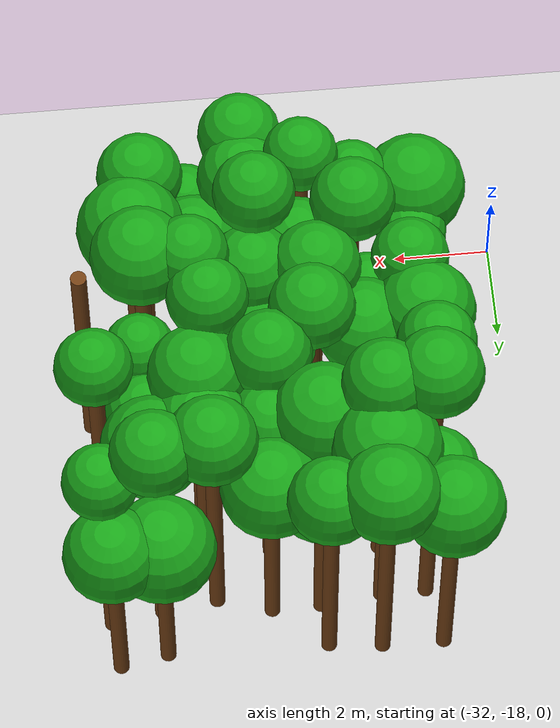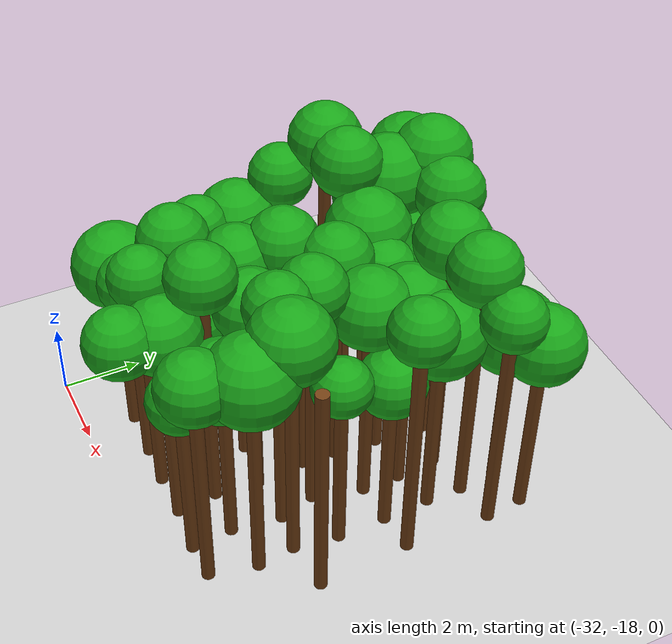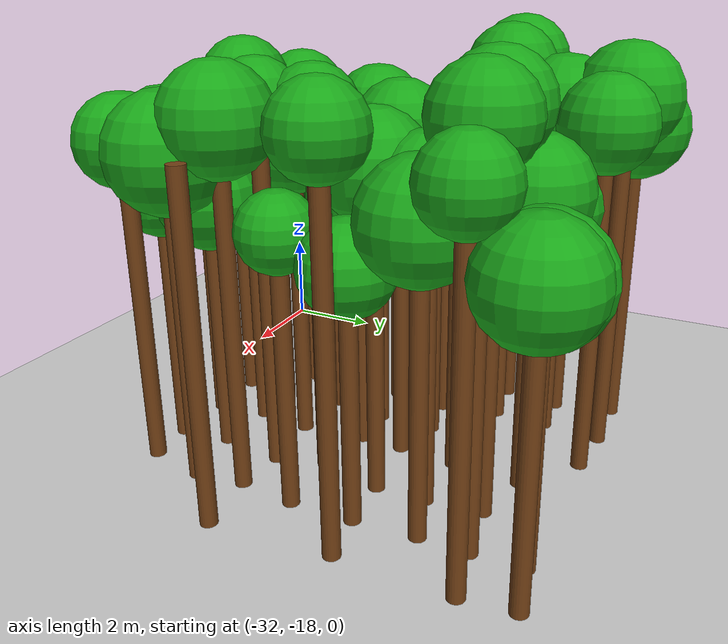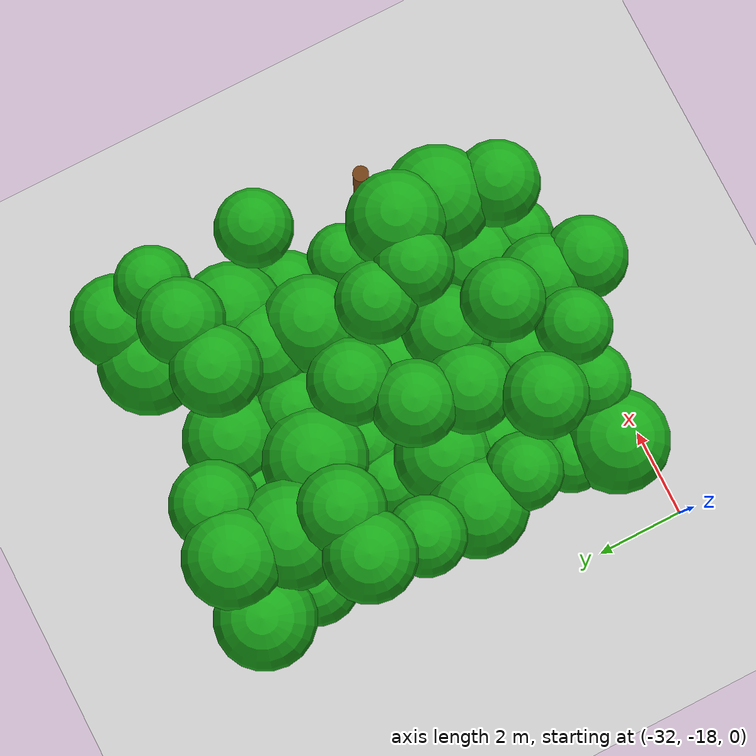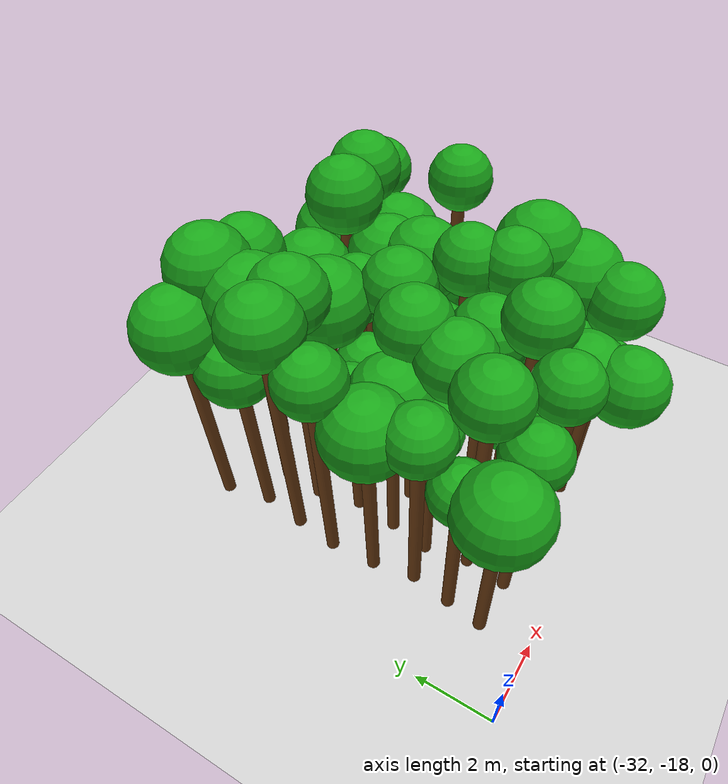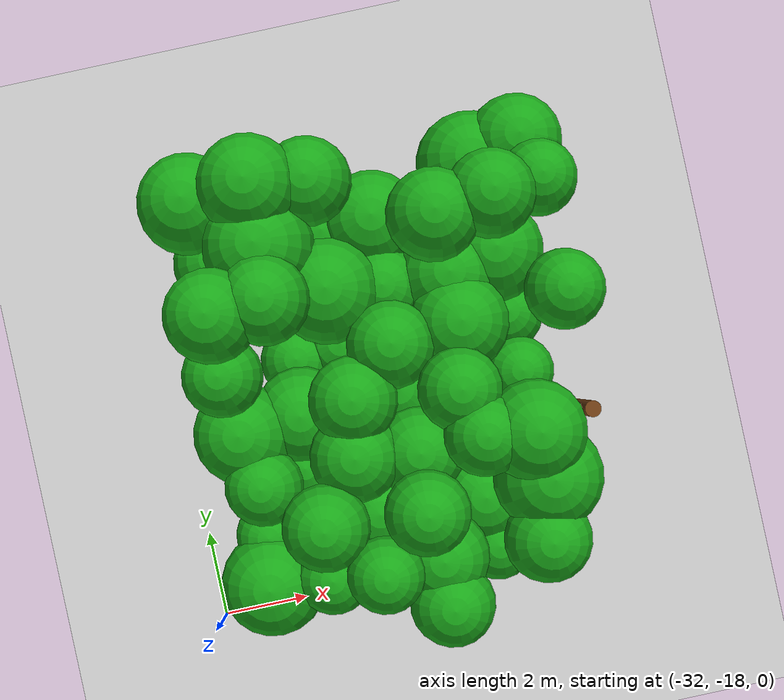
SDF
<sdf version="1.6">
 <world name="forest_world">
  <include><uri>model://sun</uri></include>
  <include><uri>model://ground_plane</uri></include>
  <model name="tree_12_trunk">
   <static>true</static>
   <pose>-30.12 -16.72 2.31 0 0 0</pose>
   <link name="link">
    <collision name="collision">
     <geometry><cylinder><radius>0.16</radius><length>4.62</length></cylinder></geometry>
    </collision>
    <visual name="visual">
     <geometry><cylinder><radius>0.16</radius><length>4.62</length></cylinder></geometry>
     <material><ambient>0.35 0.20 0.05 1</ambient><diffuse>0.45 0.25 0.08 1</diffuse></material>
    </visual>
   </link>
  </model>
  <model name="tree_12_leaf">
   <static>true</static>
   <pose>-30.12 -16.72 5.25 0 0 0</pose>
   <link name="link">
    <collision name="collision"><geometry><sphere><radius>1.06</radius></sphere></geometry></collision>
    <visual name="visual">
     <geometry><sphere><radius>1.06</radius></sphere></geometry>
     <material><ambient>0.05 0.45 0.05 1</ambient><diffuse>0.10 0.65 0.10 1</diffuse></material>
    </visual>
   </link>
  </model>
  <model name="tree_13_trunk">
   <static>true</static>
   <pose>-29.99 -15.78 2.33 0 0 0</pose>
   <link name="link">
    <collision name="collision">
     <geometry><cylinder><radius>0.16</radius><length>4.66</length></cylinder></geometry>
    </collision>
    <visual name="visual">
     <geometry><cylinder><radius>0.16</radius><length>4.66</length></cylinder></geometry>
     <material><ambient>0.35 0.20 0.05 1</ambient><diffuse>0.45 0.25 0.08 1</diffuse></material>
    </visual>
   </link>
  </model>
  <model name="tree_13_leaf">
   <static>true</static>
   <pose>-29.99 -15.78 5.08 0 0 0</pose>
   <link name="link">
    <collision name="collision"><geometry><sphere><radius>0.71</radius></sphere></geometry></collision>
    <visual name="visual">
     <geometry><sphere><radius>0.71</radius></sphere></geometry>
     <material><ambient>0.05 0.45 0.05 1</ambient><diffuse>0.10 0.65 0.10 1</diffuse></material>
    </visual>
   </link>
  </model>
  <model name="tree_14_trunk">
   <static>true</static>
   <pose>-29.84 -14.74 2.73 0 0 0</pose>
   <link name="link">
    <collision name="collision">
     <geometry><cylinder><radius>0.16</radius><length>5.46</length></cylinder></geometry>
    </collision>
    <visual name="visual">
     <geometry><cylinder><radius>0.16</radius><length>5.46</length></cylinder></geometry>
     <material><ambient>0.35 0.20 0.05 1</ambient><diffuse>0.45 0.25 0.08 1</diffuse></material>
    </visual>
   </link>
  </model>
  <model name="tree_14_leaf">
   <static>true</static>
   <pose>-29.84 -14.74 5.92 0 0 0</pose>
   <link name="link">
    <collision name="collision"><geometry><sphere><radius>0.78</radius></sphere></geometry></collision>
    <visual name="visual">
     <geometry><sphere><radius>0.78</radius></sphere></geometry>
     <material><ambient>0.05 0.45 0.05 1</ambient><diffuse>0.10 0.65 0.10 1</diffuse></material>
    </visual>
   </link>
  </model>
  <model name="tree_15_trunk">
   <static>true</static>
   <pose>-30.04 -13.66 2.52 0 0 0</pose>
   <link name="link">
    <collision name="collision">
     <geometry><cylinder><radius>0.16</radius><length>5.03</length></cylinder></geometry>
    </collision>
    <visual name="visual">
     <geometry><cylinder><radius>0.16</radius><length>5.03</length></cylinder></geometry>
     <material><ambient>0.35 0.20 0.05 1</ambient><diffuse>0.45 0.25 0.08 1</diffuse></material>
    </visual>
   </link>
  </model>
  <model name="tree_15_leaf">
   <static>true</static>
   <pose>-30.04 -13.66 5.64 0 0 0</pose>
   <link name="link">
    <collision name="collision"><geometry><sphere><radius>1.01</radius></sphere></geometry></collision>
    <visual name="visual">
     <geometry><sphere><radius>1.01</radius></sphere></geometry>
     <material><ambient>0.05 0.45 0.05 1</ambient><diffuse>0.10 0.65 0.10 1</diffuse></material>
    </visual>
   </link>
  </model>
  <model name="tree_16_trunk">
   <static>true</static>
   <pose>-30.11 -12.47 3.04 0 0 0</pose>
   <link name="link">
    <collision name="collision">
     <geometry><cylinder><radius>0.16</radius><length>6.08</length></cylinder></geometry>
    </collision>
    <visual name="visual">
     <geometry><cylinder><radius>0.16</radius><length>6.08</length></cylinder></geometry>
     <material><ambient>0.35 0.20 0.05 1</ambient><diffuse>0.45 0.25 0.08 1</diffuse></material>
    </visual>
   </link>
  </model>
  <model name="tree_16_leaf">
   <static>true</static>
   <pose>-30.11 -12.47 6.55 0 0 0</pose>
   <link name="link">
    <collision name="collision"><geometry><sphere><radius>0.79</radius></sphere></geometry></collision>
    <visual name="visual">
     <geometry><sphere><radius>0.79</radius></sphere></geometry>
     <material><ambient>0.05 0.45 0.05 1</ambient><diffuse>0.10 0.65 0.10 1</diffuse></material>
    </visual>
   </link>
  </model>
  <model name="tree_17_trunk">
   <static>true</static>
   <pose>-29.99 -11.35 3.40 0 0 0</pose>
   <link name="link">
    <collision name="collision">
     <geometry><cylinder><radius>0.16</radius><length>6.81</length></cylinder></geometry>
    </collision>
    <visual name="visual">
     <geometry><cylinder><radius>0.16</radius><length>6.81</length></cylinder></geometry>
     <material><ambient>0.35 0.20 0.05 1</ambient><diffuse>0.45 0.25 0.08 1</diffuse></material>
    </visual>
   </link>
  </model>
  <model name="tree_17_leaf">
   <static>true</static>
   <pose>-29.99 -11.35 7.35 0 0 0</pose>
   <link name="link">
    <collision name="collision"><geometry><sphere><radius>0.90</radius></sphere></geometry></collision>
    <visual name="visual">
     <geometry><sphere><radius>0.90</radius></sphere></geometry>
     <material><ambient>0.05 0.45 0.05 1</ambient><diffuse>0.10 0.65 0.10 1</diffuse></material>
    </visual>
   </link>
  </model>
  <model name="tree_18_trunk">
   <static>true</static>
   <pose>-29.84 -10.22 2.43 0 0 0</pose>
   <link name="link">
    <collision name="collision">
     <geometry><cylinder><radius>0.16</radius><length>4.86</length></cylinder></geometry>
    </collision>
    <visual name="visual">
     <geometry><cylinder><radius>0.16</radius><length>4.86</length></cylinder></geometry>
     <material><ambient>0.35 0.20 0.05 1</ambient><diffuse>0.45 0.25 0.08 1</diffuse></material>
    </visual>
   </link>
  </model>
  <model name="tree_18_leaf">
   <static>true</static>
   <pose>-29.84 -10.22 5.41 0 0 0</pose>
   <link name="link">
    <collision name="collision"><geometry><sphere><radius>0.91</radius></sphere></geometry></collision>
    <visual name="visual">
     <geometry><sphere><radius>0.91</radius></sphere></geometry>
     <material><ambient>0.05 0.45 0.05 1</ambient><diffuse>0.10 0.65 0.10 1</diffuse></material>
    </visual>
   </link>
  </model>
  <model name="tree_19_trunk">
   <static>true</static>
   <pose>-30.09 -9.06 2.80 0 0 0</pose>
   <link name="link">
    <collision name="collision">
     <geometry><cylinder><radius>0.16</radius><length>5.60</length></cylinder></geometry>
    </collision>
    <visual name="visual">
     <geometry><cylinder><radius>0.16</radius><length>5.60</length></cylinder></geometry>
     <material><ambient>0.35 0.20 0.05 1</ambient><diffuse>0.45 0.25 0.08 1</diffuse></material>
    </visual>
   </link>
  </model>
  <model name="tree_19_leaf">
   <static>true</static>
   <pose>-30.09 -9.06 6.20 0 0 0</pose>
   <link name="link">
    <collision name="collision"><geometry><sphere><radius>1.00</radius></sphere></geometry></collision>
    <visual name="visual">
     <geometry><sphere><radius>1.00</radius></sphere></geometry>
     <material><ambient>0.05 0.45 0.05 1</ambient><diffuse>0.10 0.65 0.10 1</diffuse></material>
    </visual>
   </link>
  </model>
  <model name="tree_67_trunk">
   <static>true</static>
   <pose>-28.88 -16.77 2.61 0 0 0</pose>
   <link name="link">
    <collision name="collision">
     <geometry><cylinder><radius>0.16</radius><length>5.22</length></cylinder></geometry>
    </collision>
    <visual name="visual">
     <geometry><cylinder><radius>0.16</radius><length>5.22</length></cylinder></geometry>
     <material><ambient>0.35 0.20 0.05 1</ambient><diffuse>0.45 0.25 0.08 1</diffuse></material>
    </visual>
   </link>
  </model>
  <model name="tree_67_leaf">
   <static>true</static>
   <pose>-28.88 -16.77 5.68 0 0 0</pose>
   <link name="link">
    <collision name="collision"><geometry><sphere><radius>0.77</radius></sphere></geometry></collision>
    <visual name="visual">
     <geometry><sphere><radius>0.77</radius></sphere></geometry>
     <material><ambient>0.05 0.45 0.05 1</ambient><diffuse>0.10 0.65 0.10 1</diffuse></material>
    </visual>
   </link>
  </model>
  <model name="tree_68_trunk">
   <static>true</static>
   <pose>-28.78 -15.70 3.07 0 0 0</pose>
   <link name="link">
    <collision name="collision">
     <geometry><cylinder><radius>0.16</radius><length>6.15</length></cylinder></geometry>
    </collision>
    <visual name="visual">
     <geometry><cylinder><radius>0.16</radius><length>6.15</length></cylinder></geometry>
     <material><ambient>0.35 0.20 0.05 1</ambient><diffuse>0.45 0.25 0.08 1</diffuse></material>
    </visual>
   </link>
  </model>
  <model name="tree_68_leaf">
   <static>true</static>
   <pose>-28.78 -15.70 6.66 0 0 0</pose>
   <link name="link">
    <collision name="collision"><geometry><sphere><radius>0.85</radius></sphere></geometry></collision>
    <visual name="visual">
     <geometry><sphere><radius>0.85</radius></sphere></geometry>
     <material><ambient>0.05 0.45 0.05 1</ambient><diffuse>0.10 0.65 0.10 1</diffuse></material>
    </visual>
   </link>
  </model>
  <model name="tree_69_trunk">
   <static>true</static>
   <pose>-28.99 -14.58 2.33 0 0 0</pose>
   <link name="link">
    <collision name="collision">
     <geometry><cylinder><radius>0.16</radius><length>4.65</length></cylinder></geometry>
    </collision>
    <visual name="visual">
     <geometry><cylinder><radius>0.16</radius><length>4.65</length></cylinder></geometry>
     <material><ambient>0.35 0.20 0.05 1</ambient><diffuse>0.45 0.25 0.08 1</diffuse></material>
    </visual>
   </link>
  </model>
  <model name="tree_69_leaf">
   <static>true</static>
   <pose>-28.99 -14.58 5.08 0 0 0</pose>
   <link name="link">
    <collision name="collision"><geometry><sphere><radius>0.71</radius></sphere></geometry></collision>
    <visual name="visual">
     <geometry><sphere><radius>0.71</radius></sphere></geometry>
     <material><ambient>0.05 0.45 0.05 1</ambient><diffuse>0.10 0.65 0.10 1</diffuse></material>
    </visual>
   </link>
  </model>
  <model name="tree_70_trunk">
   <static>true</static>
   <pose>-28.83 -13.54 2.40 0 0 0</pose>
   <link name="link">
    <collision name="collision">
     <geometry><cylinder><radius>0.16</radius><length>4.80</length></cylinder></geometry>
    </collision>
    <visual name="visual">
     <geometry><cylinder><radius>0.16</radius><length>4.80</length></cylinder></geometry>
     <material><ambient>0.35 0.20 0.05 1</ambient><diffuse>0.45 0.25 0.08 1</diffuse></material>
    </visual>
   </link>
  </model>
  <model name="tree_70_leaf">
   <static>true</static>
   <pose>-28.83 -13.54 5.39 0 0 0</pose>
   <link name="link">
    <collision name="collision"><geometry><sphere><radius>0.98</radius></sphere></geometry></collision>
    <visual name="visual">
     <geometry><sphere><radius>0.98</radius></sphere></geometry>
     <material><ambient>0.05 0.45 0.05 1</ambient><diffuse>0.10 0.65 0.10 1</diffuse></material>
    </visual>
   </link>
  </model>
  <model name="tree_71_trunk">
   <static>true</static>
   <pose>-28.73 -12.42 2.08 0 0 0</pose>
   <link name="link">
    <collision name="collision">
     <geometry><cylinder><radius>0.16</radius><length>4.15</length></cylinder></geometry>
    </collision>
    <visual name="visual">
     <geometry><cylinder><radius>0.16</radius><length>4.15</length></cylinder></geometry>
     <material><ambient>0.35 0.20 0.05 1</ambient><diffuse>0.45 0.25 0.08 1</diffuse></material>
    </visual>
   </link>
  </model>
  <model name="tree_71_leaf">
   <static>true</static>
   <pose>-28.73 -12.42 4.62 0 0 0</pose>
   <link name="link">
    <collision name="collision"><geometry><sphere><radius>0.78</radius></sphere></geometry></collision>
    <visual name="visual">
     <geometry><sphere><radius>0.78</radius></sphere></geometry>
     <material><ambient>0.05 0.45 0.05 1</ambient><diffuse>0.10 0.65 0.10 1</diffuse></material>
    </visual>
   </link>
  </model>
  <model name="tree_72_trunk">
   <static>true</static>
   <pose>-28.98 -11.27 3.39 0 0 0</pose>
   <link name="link">
    <collision name="collision">
     <geometry><cylinder><radius>0.16</radius><length>6.78</length></cylinder></geometry>
    </collision>
    <visual name="visual">
     <geometry><cylinder><radius>0.16</radius><length>6.78</length></cylinder></geometry>
     <material><ambient>0.35 0.20 0.05 1</ambient><diffuse>0.45 0.25 0.08 1</diffuse></material>
    </visual>
   </link>
  </model>
  <model name="tree_72_leaf">
   <static>true</static>
   <pose>-28.98 -11.27 7.30 0 0 0</pose>
   <link name="link">
    <collision name="collision"><geometry><sphere><radius>0.86</radius></sphere></geometry></collision>
    <visual name="visual">
     <geometry><sphere><radius>0.86</radius></sphere></geometry>
     <material><ambient>0.05 0.45 0.05 1</ambient><diffuse>0.10 0.65 0.10 1</diffuse></material>
    </visual>
   </link>
  </model>
  <model name="tree_73_trunk">
   <static>true</static>
   <pose>-28.92 -10.21 2.96 0 0 0</pose>
   <link name="link">
    <collision name="collision">
     <geometry><cylinder><radius>0.16</radius><length>5.92</length></cylinder></geometry>
    </collision>
    <visual name="visual">
     <geometry><cylinder><radius>0.16</radius><length>5.92</length></cylinder></geometry>
     <material><ambient>0.35 0.20 0.05 1</ambient><diffuse>0.45 0.25 0.08 1</diffuse></material>
    </visual>
   </link>
  </model>
  <model name="tree_73_leaf">
   <static>true</static>
   <pose>-28.92 -10.21 6.57 0 0 0</pose>
   <link name="link">
    <collision name="collision"><geometry><sphere><radius>1.08</radius></sphere></geometry></collision>
    <visual name="visual">
     <geometry><sphere><radius>1.08</radius></sphere></geometry>
     <material><ambient>0.05 0.45 0.05 1</ambient><diffuse>0.10 0.65 0.10 1</diffuse></material>
    </visual>
   </link>
  </model>
  <model name="tree_74_trunk">
   <static>true</static>
   <pose>-28.84 -9.07 3.18 0 0 0</pose>
   <link name="link">
    <collision name="collision">
     <geometry><cylinder><radius>0.16</radius><length>6.36</length></cylinder></geometry>
    </collision>
    <visual name="visual">
     <geometry><cylinder><radius>0.16</radius><length>6.36</length></cylinder></geometry>
     <material><ambient>0.35 0.20 0.05 1</ambient><diffuse>0.45 0.25 0.08 1</diffuse></material>
    </visual>
   </link>
  </model>
  <model name="tree_74_leaf">
   <static>true</static>
   <pose>-28.84 -9.07 6.95 0 0 0</pose>
   <link name="link">
    <collision name="collision"><geometry><sphere><radius>0.98</radius></sphere></geometry></collision>
    <visual name="visual">
     <geometry><sphere><radius>0.98</radius></sphere></geometry>
     <material><ambient>0.05 0.45 0.05 1</ambient><diffuse>0.10 0.65 0.10 1</diffuse></material>
    </visual>
   </link>
  </model>
  <model name="tree_122_trunk">
   <static>true</static>
   <pose>-27.85 -16.81 3.11 0 0 0</pose>
   <link name="link">
    <collision name="collision">
     <geometry><cylinder><radius>0.16</radius><length>6.22</length></cylinder></geometry>
    </collision>
    <visual name="visual">
     <geometry><cylinder><radius>0.16</radius><length>6.22</length></cylinder></geometry>
     <material><ambient>0.35 0.20 0.05 1</ambient><diffuse>0.45 0.25 0.08 1</diffuse></material>
    </visual>
   </link>
  </model>
  <model name="tree_122_leaf">
   <static>true</static>
   <pose>-27.85 -16.81 6.68 0 0 0</pose>
   <link name="link">
    <collision name="collision"><geometry><sphere><radius>0.75</radius></sphere></geometry></collision>
    <visual name="visual">
     <geometry><sphere><radius>0.75</radius></sphere></geometry>
     <material><ambient>0.05 0.45 0.05 1</ambient><diffuse>0.10 0.65 0.10 1</diffuse></material>
    </visual>
   </link>
  </model>
  <model name="tree_123_trunk">
   <static>true</static>
   <pose>-27.72 -15.76 2.30 0 0 0</pose>
   <link name="link">
    <collision name="collision">
     <geometry><cylinder><radius>0.16</radius><length>4.60</length></cylinder></geometry>
    </collision>
    <visual name="visual">
     <geometry><cylinder><radius>0.16</radius><length>4.60</length></cylinder></geometry>
     <material><ambient>0.35 0.20 0.05 1</ambient><diffuse>0.45 0.25 0.08 1</diffuse></material>
    </visual>
   </link>
  </model>
  <model name="tree_123_leaf">
   <static>true</static>
   <pose>-27.72 -15.76 5.12 0 0 0</pose>
   <link name="link">
    <collision name="collision"><geometry><sphere><radius>0.87</radius></sphere></geometry></collision>
    <visual name="visual">
     <geometry><sphere><radius>0.87</radius></sphere></geometry>
     <material><ambient>0.05 0.45 0.05 1</ambient><diffuse>0.10 0.65 0.10 1</diffuse></material>
    </visual>
   </link>
  </model>
  <model name="tree_124_trunk">
   <static>true</static>
   <pose>-27.95 -14.52 2.85 0 0 0</pose>
   <link name="link">
    <collision name="collision">
     <geometry><cylinder><radius>0.16</radius><length>5.70</length></cylinder></geometry>
    </collision>
    <visual name="visual">
     <geometry><cylinder><radius>0.16</radius><length>5.70</length></cylinder></geometry>
     <material><ambient>0.35 0.20 0.05 1</ambient><diffuse>0.45 0.25 0.08 1</diffuse></material>
    </visual>
   </link>
  </model>
  <model name="tree_124_leaf">
   <static>true</static>
   <pose>-27.95 -14.52 6.24 0 0 0</pose>
   <link name="link">
    <collision name="collision"><geometry><sphere><radius>0.90</radius></sphere></geometry></collision>
    <visual name="visual">
     <geometry><sphere><radius>0.90</radius></sphere></geometry>
     <material><ambient>0.05 0.45 0.05 1</ambient><diffuse>0.10 0.65 0.10 1</diffuse></material>
    </visual>
   </link>
  </model>
  <model name="tree_125_trunk">
   <static>true</static>
   <pose>-27.77 -13.44 3.02 0 0 0</pose>
   <link name="link">
    <collision name="collision">
     <geometry><cylinder><radius>0.16</radius><length>6.05</length></cylinder></geometry>
    </collision>
    <visual name="visual">
     <geometry><cylinder><radius>0.16</radius><length>6.05</length></cylinder></geometry>
     <material><ambient>0.35 0.20 0.05 1</ambient><diffuse>0.45 0.25 0.08 1</diffuse></material>
    </visual>
   </link>
  </model>
  <model name="tree_125_leaf">
   <static>true</static>
   <pose>-27.77 -13.44 6.56 0 0 0</pose>
   <link name="link">
    <collision name="collision"><geometry><sphere><radius>0.86</radius></sphere></geometry></collision>
    <visual name="visual">
     <geometry><sphere><radius>0.86</radius></sphere></geometry>
     <material><ambient>0.05 0.45 0.05 1</ambient><diffuse>0.10 0.65 0.10 1</diffuse></material>
    </visual>
   </link>
  </model>
  <model name="tree_126_trunk">
   <static>true</static>
   <pose>-27.80 -12.30 2.07 0 0 0</pose>
   <link name="link">
    <collision name="collision">
     <geometry><cylinder><radius>0.16</radius><length>4.15</length></cylinder></geometry>
    </collision>
    <visual name="visual">
     <geometry><cylinder><radius>0.16</radius><length>4.15</length></cylinder></geometry>
     <material><ambient>0.35 0.20 0.05 1</ambient><diffuse>0.45 0.25 0.08 1</diffuse></material>
    </visual>
   </link>
  </model>
  <model name="tree_126_leaf">
   <static>true</static>
   <pose>-27.80 -12.30 4.63 0 0 0</pose>
   <link name="link">
    <collision name="collision"><geometry><sphere><radius>0.80</radius></sphere></geometry></collision>
    <visual name="visual">
     <geometry><sphere><radius>0.80</radius></sphere></geometry>
     <material><ambient>0.05 0.45 0.05 1</ambient><diffuse>0.10 0.65 0.10 1</diffuse></material>
    </visual>
   </link>
  </model>
  <model name="tree_127_trunk">
   <static>true</static>
   <pose>-27.82 -11.27 2.76 0 0 0</pose>
   <link name="link">
    <collision name="collision">
     <geometry><cylinder><radius>0.16</radius><length>5.53</length></cylinder></geometry>
    </collision>
    <visual name="visual">
     <geometry><cylinder><radius>0.16</radius><length>5.53</length></cylinder></geometry>
     <material><ambient>0.35 0.20 0.05 1</ambient><diffuse>0.45 0.25 0.08 1</diffuse></material>
    </visual>
   </link>
  </model>
  <model name="tree_127_leaf">
   <static>true</static>
   <pose>-27.82 -11.27 6.15 0 0 0</pose>
   <link name="link">
    <collision name="collision"><geometry><sphere><radius>1.04</radius></sphere></geometry></collision>
    <visual name="visual">
     <geometry><sphere><radius>1.04</radius></sphere></geometry>
     <material><ambient>0.05 0.45 0.05 1</ambient><diffuse>0.10 0.65 0.10 1</diffuse></material>
    </visual>
   </link>
  </model>
  <model name="tree_128_trunk">
   <static>true</static>
   <pose>-27.68 -10.07 2.28 0 0 0</pose>
   <link name="link">
    <collision name="collision">
     <geometry><cylinder><radius>0.16</radius><length>4.57</length></cylinder></geometry>
    </collision>
    <visual name="visual">
     <geometry><cylinder><radius>0.16</radius><length>4.57</length></cylinder></geometry>
     <material><ambient>0.35 0.20 0.05 1</ambient><diffuse>0.45 0.25 0.08 1</diffuse></material>
    </visual>
   </link>
  </model>
  <model name="tree_128_leaf">
   <static>true</static>
   <pose>-27.68 -10.07 5.16 0 0 0</pose>
   <link name="link">
    <collision name="collision"><geometry><sphere><radius>0.99</radius></sphere></geometry></collision>
    <visual name="visual">
     <geometry><sphere><radius>0.99</radius></sphere></geometry>
     <material><ambient>0.05 0.45 0.05 1</ambient><diffuse>0.10 0.65 0.10 1</diffuse></material>
    </visual>
   </link>
  </model>
  <model name="tree_129_trunk">
   <static>true</static>
   <pose>-27.76 -9.18 3.05 0 0 0</pose>
   <link name="link">
    <collision name="collision">
     <geometry><cylinder><radius>0.16</radius><length>6.11</length></cylinder></geometry>
    </collision>
    <visual name="visual">
     <geometry><cylinder><radius>0.16</radius><length>6.11</length></cylinder></geometry>
     <material><ambient>0.35 0.20 0.05 1</ambient><diffuse>0.45 0.25 0.08 1</diffuse></material>
    </visual>
   </link>
  </model>
  <model name="tree_129_leaf">
   <static>true</static>
   <pose>-27.76 -9.18 6.63 0 0 0</pose>
   <link name="link">
    <collision name="collision"><geometry><sphere><radius>0.87</radius></sphere></geometry></collision>
    <visual name="visual">
     <geometry><sphere><radius>0.87</radius></sphere></geometry>
     <material><ambient>0.05 0.45 0.05 1</ambient><diffuse>0.10 0.65 0.10 1</diffuse></material>
    </visual>
   </link>
  </model>
  <model name="tree_176_leaf">
   <static>true</static>
   <pose>-26.71 -17.73 6.08 0 0 0</pose>
   <link name="link">
    <collision name="collision"><geometry><sphere><radius>0.84</radius></sphere></geometry></collision>
    <visual name="visual">
     <geometry><sphere><radius>0.84</radius></sphere></geometry>
     <material><ambient>0.05 0.45 0.05 1</ambient><diffuse>0.10 0.65 0.10 1</diffuse></material>
    </visual>
   </link>
  </model>
  <model name="tree_177_trunk">
   <static>true</static>
   <pose>-26.71 -16.80 2.69 0 0 0</pose>
   <link name="link">
    <collision name="collision">
     <geometry><cylinder><radius>0.16</radius><length>5.38</length></cylinder></geometry>
    </collision>
    <visual name="visual">
     <geometry><cylinder><radius>0.16</radius><length>5.38</length></cylinder></geometry>
     <material><ambient>0.35 0.20 0.05 1</ambient><diffuse>0.45 0.25 0.08 1</diffuse></material>
    </visual>
   </link>
  </model>
  <model name="tree_177_leaf">
   <static>true</static>
   <pose>-26.71 -16.80 5.94 0 0 0</pose>
   <link name="link">
    <collision name="collision"><geometry><sphere><radius>0.93</radius></sphere></geometry></collision>
    <visual name="visual">
     <geometry><sphere><radius>0.93</radius></sphere></geometry>
     <material><ambient>0.05 0.45 0.05 1</ambient><diffuse>0.10 0.65 0.10 1</diffuse></material>
    </visual>
   </link>
  </model>
  <model name="tree_178_trunk">
   <static>true</static>
   <pose>-26.84 -15.78 3.30 0 0 0</pose>
   <link name="link">
    <collision name="collision">
     <geometry><cylinder><radius>0.16</radius><length>6.61</length></cylinder></geometry>
    </collision>
    <visual name="visual">
     <geometry><cylinder><radius>0.16</radius><length>6.61</length></cylinder></geometry>
     <material><ambient>0.35 0.20 0.05 1</ambient><diffuse>0.45 0.25 0.08 1</diffuse></material>
    </visual>
   </link>
  </model>
  <model name="tree_178_leaf">
   <static>true</static>
   <pose>-26.84 -15.78 7.10 0 0 0</pose>
   <link name="link">
    <collision name="collision"><geometry><sphere><radius>0.82</radius></sphere></geometry></collision>
    <visual name="visual">
     <geometry><sphere><radius>0.82</radius></sphere></geometry>
     <material><ambient>0.05 0.45 0.05 1</ambient><diffuse>0.10 0.65 0.10 1</diffuse></material>
    </visual>
   </link>
  </model>
  <model name="tree_179_trunk">
   <static>true</static>
   <pose>-26.72 -14.70 2.72 0 0 0</pose>
   <link name="link">
    <collision name="collision">
     <geometry><cylinder><radius>0.16</radius><length>5.44</length></cylinder></geometry>
    </collision>
    <visual name="visual">
     <geometry><cylinder><radius>0.16</radius><length>5.44</length></cylinder></geometry>
     <material><ambient>0.35 0.20 0.05 1</ambient><diffuse>0.45 0.25 0.08 1</diffuse></material>
    </visual>
   </link>
  </model>
  <model name="tree_179_leaf">
   <static>true</static>
   <pose>-26.72 -14.70 5.98 0 0 0</pose>
   <link name="link">
    <collision name="collision"><geometry><sphere><radius>0.90</radius></sphere></geometry></collision>
    <visual name="visual">
     <geometry><sphere><radius>0.90</radius></sphere></geometry>
     <material><ambient>0.05 0.45 0.05 1</ambient><diffuse>0.10 0.65 0.10 1</diffuse></material>
    </visual>
   </link>
  </model>
  <model name="tree_180_trunk">
   <static>true</static>
   <pose>-26.86 -13.41 2.29 0 0 0</pose>
   <link name="link">
    <collision name="collision">
     <geometry><cylinder><radius>0.16</radius><length>4.58</length></cylinder></geometry>
    </collision>
    <visual name="visual">
     <geometry><cylinder><radius>0.16</radius><length>4.58</length></cylinder></geometry>
     <material><ambient>0.35 0.20 0.05 1</ambient><diffuse>0.45 0.25 0.08 1</diffuse></material>
    </visual>
   </link>
  </model>
  <model name="tree_180_leaf">
   <static>true</static>
   <pose>-26.86 -13.41 5.18 0 0 0</pose>
   <link name="link">
    <collision name="collision"><geometry><sphere><radius>1.00</radius></sphere></geometry></collision>
    <visual name="visual">
     <geometry><sphere><radius>1.00</radius></sphere></geometry>
     <material><ambient>0.05 0.45 0.05 1</ambient><diffuse>0.10 0.65 0.10 1</diffuse></material>
    </visual>
   </link>
  </model>
  <model name="tree_181_trunk">
   <static>true</static>
   <pose>-26.84 -12.55 2.98 0 0 0</pose>
   <link name="link">
    <collision name="collision">
     <geometry><cylinder><radius>0.16</radius><length>5.96</length></cylinder></geometry>
    </collision>
    <visual name="visual">
     <geometry><cylinder><radius>0.16</radius><length>5.96</length></cylinder></geometry>
     <material><ambient>0.35 0.20 0.05 1</ambient><diffuse>0.45 0.25 0.08 1</diffuse></material>
    </visual>
   </link>
  </model>
  <model name="tree_181_leaf">
   <static>true</static>
   <pose>-26.84 -12.55 6.47 0 0 0</pose>
   <link name="link">
    <collision name="collision"><geometry><sphere><radius>0.86</radius></sphere></geometry></collision>
    <visual name="visual">
     <geometry><sphere><radius>0.86</radius></sphere></geometry>
     <material><ambient>0.05 0.45 0.05 1</ambient><diffuse>0.10 0.65 0.10 1</diffuse></material>
    </visual>
   </link>
  </model>
  <model name="tree_182_trunk">
   <static>true</static>
   <pose>-26.76 -11.40 2.63 0 0 0</pose>
   <link name="link">
    <collision name="collision">
     <geometry><cylinder><radius>0.16</radius><length>5.26</length></cylinder></geometry>
    </collision>
    <visual name="visual">
     <geometry><cylinder><radius>0.16</radius><length>5.26</length></cylinder></geometry>
     <material><ambient>0.35 0.20 0.05 1</ambient><diffuse>0.45 0.25 0.08 1</diffuse></material>
    </visual>
   </link>
  </model>
  <model name="tree_182_leaf">
   <static>true</static>
   <pose>-26.76 -11.40 5.76 0 0 0</pose>
   <link name="link">
    <collision name="collision"><geometry><sphere><radius>0.83</radius></sphere></geometry></collision>
    <visual name="visual">
     <geometry><sphere><radius>0.83</radius></sphere></geometry>
     <material><ambient>0.05 0.45 0.05 1</ambient><diffuse>0.10 0.65 0.10 1</diffuse></material>
    </visual>
   </link>
  </model>
  <model name="tree_183_trunk">
   <static>true</static>
   <pose>-26.68 -10.05 2.52 0 0 0</pose>
   <link name="link">
    <collision name="collision">
     <geometry><cylinder><radius>0.16</radius><length>5.04</length></cylinder></geometry>
    </collision>
    <visual name="visual">
     <geometry><cylinder><radius>0.16</radius><length>5.04</length></cylinder></geometry>
     <material><ambient>0.35 0.20 0.05 1</ambient><diffuse>0.45 0.25 0.08 1</diffuse></material>
    </visual>
   </link>
  </model>
  <model name="tree_183_leaf">
   <static>true</static>
   <pose>-26.68 -10.05 5.64 0 0 0</pose>
   <link name="link">
    <collision name="collision"><geometry><sphere><radius>1.01</radius></sphere></geometry></collision>
    <visual name="visual">
     <geometry><sphere><radius>1.01</radius></sphere></geometry>
     <material><ambient>0.05 0.45 0.05 1</ambient><diffuse>0.10 0.65 0.10 1</diffuse></material>
    </visual>
   </link>
  </model>
  <model name="tree_232_trunk">
   <static>true</static>
   <pose>-25.54 -16.89 2.29 0 0 0</pose>
   <link name="link">
    <collision name="collision">
     <geometry><cylinder><radius>0.16</radius><length>4.58</length></cylinder></geometry>
    </collision>
    <visual name="visual">
     <geometry><cylinder><radius>0.16</radius><length>4.58</length></cylinder></geometry>
     <material><ambient>0.35 0.20 0.05 1</ambient><diffuse>0.45 0.25 0.08 1</diffuse></material>
    </visual>
   </link>
  </model>
  <model name="tree_232_leaf">
   <static>true</static>
   <pose>-25.54 -16.89 5.04 0 0 0</pose>
   <link name="link">
    <collision name="collision"><geometry><sphere><radius>0.77</radius></sphere></geometry></collision>
    <visual name="visual">
     <geometry><sphere><radius>0.77</radius></sphere></geometry>
     <material><ambient>0.05 0.45 0.05 1</ambient><diffuse>0.10 0.65 0.10 1</diffuse></material>
    </visual>
   </link>
  </model>
  <model name="tree_233_trunk">
   <static>true</static>
   <pose>-25.63 -15.86 2.27 0 0 0</pose>
   <link name="link">
    <collision name="collision">
     <geometry><cylinder><radius>0.16</radius><length>4.53</length></cylinder></geometry>
    </collision>
    <visual name="visual">
     <geometry><cylinder><radius>0.16</radius><length>4.53</length></cylinder></geometry>
     <material><ambient>0.35 0.20 0.05 1</ambient><diffuse>0.45 0.25 0.08 1</diffuse></material>
    </visual>
   </link>
  </model>
  <model name="tree_233_leaf">
   <static>true</static>
   <pose>-25.63 -15.86 5.13 0 0 0</pose>
   <link name="link">
    <collision name="collision"><geometry><sphere><radius>0.99</radius></sphere></geometry></collision>
    <visual name="visual">
     <geometry><sphere><radius>0.99</radius></sphere></geometry>
     <material><ambient>0.05 0.45 0.05 1</ambient><diffuse>0.10 0.65 0.10 1</diffuse></material>
    </visual>
   </link>
  </model>
  <model name="tree_234_trunk">
   <static>true</static>
   <pose>-25.47 -14.59 3.24 0 0 0</pose>
   <link name="link">
    <collision name="collision">
     <geometry><cylinder><radius>0.16</radius><length>6.47</length></cylinder></geometry>
    </collision>
    <visual name="visual">
     <geometry><cylinder><radius>0.16</radius><length>6.47</length></cylinder></geometry>
     <material><ambient>0.35 0.20 0.05 1</ambient><diffuse>0.45 0.25 0.08 1</diffuse></material>
    </visual>
   </link>
  </model>
  <model name="tree_234_leaf">
   <static>true</static>
   <pose>-25.47 -14.59 6.95 0 0 0</pose>
   <link name="link">
    <collision name="collision"><geometry><sphere><radius>0.79</radius></sphere></geometry></collision>
    <visual name="visual">
     <geometry><sphere><radius>0.79</radius></sphere></geometry>
     <material><ambient>0.05 0.45 0.05 1</ambient><diffuse>0.10 0.65 0.10 1</diffuse></material>
    </visual>
   </link>
  </model>
  <model name="tree_235_trunk">
   <static>true</static>
   <pose>-25.75 -13.66 3.18 0 0 0</pose>
   <link name="link">
    <collision name="collision">
     <geometry><cylinder><radius>0.16</radius><length>6.36</length></cylinder></geometry>
    </collision>
    <visual name="visual">
     <geometry><cylinder><radius>0.16</radius><length>6.36</length></cylinder></geometry>
     <material><ambient>0.35 0.20 0.05 1</ambient><diffuse>0.45 0.25 0.08 1</diffuse></material>
    </visual>
   </link>
  </model>
  <model name="tree_235_leaf">
   <static>true</static>
   <pose>-25.75 -13.66 6.85 0 0 0</pose>
   <link name="link">
    <collision name="collision"><geometry><sphere><radius>0.81</radius></sphere></geometry></collision>
    <visual name="visual">
     <geometry><sphere><radius>0.81</radius></sphere></geometry>
     <material><ambient>0.05 0.45 0.05 1</ambient><diffuse>0.10 0.65 0.10 1</diffuse></material>
    </visual>
   </link>
  </model>
  <model name="tree_236_trunk">
   <static>true</static>
   <pose>-25.44 -12.40 2.76 0 0 0</pose>
   <link name="link">
    <collision name="collision">
     <geometry><cylinder><radius>0.16</radius><length>5.52</length></cylinder></geometry>
    </collision>
    <visual name="visual">
     <geometry><cylinder><radius>0.16</radius><length>5.52</length></cylinder></geometry>
     <material><ambient>0.35 0.20 0.05 1</ambient><diffuse>0.45 0.25 0.08 1</diffuse></material>
    </visual>
   </link>
  </model>
  <model name="tree_236_leaf">
   <static>true</static>
   <pose>-25.44 -12.40 6.10 0 0 0</pose>
   <link name="link">
    <collision name="collision"><geometry><sphere><radius>0.98</radius></sphere></geometry></collision>
    <visual name="visual">
     <geometry><sphere><radius>0.98</radius></sphere></geometry>
     <material><ambient>0.05 0.45 0.05 1</ambient><diffuse>0.10 0.65 0.10 1</diffuse></material>
    </visual>
   </link>
  </model>
  <model name="tree_237_trunk">
   <static>true</static>
   <pose>-25.45 -11.43 2.60 0 0 0</pose>
   <link name="link">
    <collision name="collision">
     <geometry><cylinder><radius>0.16</radius><length>5.19</length></cylinder></geometry>
    </collision>
    <visual name="visual">
     <geometry><cylinder><radius>0.16</radius><length>5.19</length></cylinder></geometry>
     <material><ambient>0.35 0.20 0.05 1</ambient><diffuse>0.45 0.25 0.08 1</diffuse></material>
    </visual>
   </link>
  </model>
  <model name="tree_237_leaf">
   <static>true</static>
   <pose>-25.45 -11.43 5.79 0 0 0</pose>
   <link name="link">
    <collision name="collision"><geometry><sphere><radius>0.99</radius></sphere></geometry></collision>
    <visual name="visual">
     <geometry><sphere><radius>0.99</radius></sphere></geometry>
     <material><ambient>0.05 0.45 0.05 1</ambient><diffuse>0.10 0.65 0.10 1</diffuse></material>
    </visual>
   </link>
  </model>
  <model name="tree_238_trunk">
   <static>true</static>
   <pose>-25.58 -10.37 3.33 0 0 0</pose>
   <link name="link">
    <collision name="collision">
     <geometry><cylinder><radius>0.16</radius><length>6.67</length></cylinder></geometry>
    </collision>
    <visual name="visual">
     <geometry><cylinder><radius>0.16</radius><length>6.67</length></cylinder></geometry>
     <material><ambient>0.35 0.20 0.05 1</ambient><diffuse>0.45 0.25 0.08 1</diffuse></material>
    </visual>
   </link>
  </model>
  <model name="tree_238_leaf">
   <static>true</static>
   <pose>-25.58 -10.37 7.20 0 0 0</pose>
   <link name="link">
    <collision name="collision"><geometry><sphere><radius>0.89</radius></sphere></geometry></collision>
    <visual name="visual">
     <geometry><sphere><radius>0.89</radius></sphere></geometry>
     <material><ambient>0.05 0.45 0.05 1</ambient><diffuse>0.10 0.65 0.10 1</diffuse></material>
    </visual>
   </link>
  </model>
  <model name="tree_287_trunk">
   <static>true</static>
   <pose>-24.65 -16.85 2.87 0 0 0</pose>
   <link name="link">
    <collision name="collision">
     <geometry><cylinder><radius>0.16</radius><length>5.75</length></cylinder></geometry>
    </collision>
    <visual name="visual">
     <geometry><cylinder><radius>0.16</radius><length>5.75</length></cylinder></geometry>
     <material><ambient>0.35 0.20 0.05 1</ambient><diffuse>0.45 0.25 0.08 1</diffuse></material>
    </visual>
   </link>
  </model>
  <model name="tree_287_leaf">
   <static>true</static>
   <pose>-24.65 -16.85 6.26 0 0 0</pose>
   <link name="link">
    <collision name="collision"><geometry><sphere><radius>0.86</radius></sphere></geometry></collision>
    <visual name="visual">
     <geometry><sphere><radius>0.86</radius></sphere></geometry>
     <material><ambient>0.05 0.45 0.05 1</ambient><diffuse>0.10 0.65 0.10 1</diffuse></material>
    </visual>
   </link>
  </model>
  <model name="tree_288_trunk">
   <static>true</static>
   <pose>-24.39 -15.67 2.78 0 0 0</pose>
   <link name="link">
    <collision name="collision">
     <geometry><cylinder><radius>0.16</radius><length>5.56</length></cylinder></geometry>
    </collision>
    <visual name="visual">
     <geometry><cylinder><radius>0.16</radius><length>5.56</length></cylinder></geometry>
     <material><ambient>0.35 0.20 0.05 1</ambient><diffuse>0.45 0.25 0.08 1</diffuse></material>
    </visual>
   </link>
  </model>
  <model name="tree_288_leaf">
   <static>true</static>
   <pose>-24.39 -15.67 6.21 0 0 0</pose>
   <link name="link">
    <collision name="collision"><geometry><sphere><radius>1.08</radius></sphere></geometry></collision>
    <visual name="visual">
     <geometry><sphere><radius>1.08</radius></sphere></geometry>
     <material><ambient>0.05 0.45 0.05 1</ambient><diffuse>0.10 0.65 0.10 1</diffuse></material>
    </visual>
   </link>
  </model>
  <model name="tree_289_trunk">
   <static>true</static>
   <pose>-24.52 -14.72 3.10 0 0 0</pose>
   <link name="link">
    <collision name="collision">
     <geometry><cylinder><radius>0.16</radius><length>6.21</length></cylinder></geometry>
    </collision>
    <visual name="visual">
     <geometry><cylinder><radius>0.16</radius><length>6.21</length></cylinder></geometry>
     <material><ambient>0.35 0.20 0.05 1</ambient><diffuse>0.45 0.25 0.08 1</diffuse></material>
    </visual>
   </link>
  </model>
  <model name="tree_289_leaf">
   <static>true</static>
   <pose>-24.52 -14.72 6.80 0 0 0</pose>
   <link name="link">
    <collision name="collision"><geometry><sphere><radius>0.99</radius></sphere></geometry></collision>
    <visual name="visual">
     <geometry><sphere><radius>0.99</radius></sphere></geometry>
     <material><ambient>0.05 0.45 0.05 1</ambient><diffuse>0.10 0.65 0.10 1</diffuse></material>
    </visual>
   </link>
  </model>
  <model name="tree_290_trunk">
   <static>true</static>
   <pose>-24.38 -13.59 2.35 0 0 0</pose>
   <link name="link">
    <collision name="collision">
     <geometry><cylinder><radius>0.16</radius><length>4.70</length></cylinder></geometry>
    </collision>
    <visual name="visual">
     <geometry><cylinder><radius>0.16</radius><length>4.70</length></cylinder></geometry>
     <material><ambient>0.35 0.20 0.05 1</ambient><diffuse>0.45 0.25 0.08 1</diffuse></material>
    </visual>
   </link>
  </model>
  <model name="tree_290_leaf">
   <static>true</static>
   <pose>-24.38 -13.59 5.12 0 0 0</pose>
   <link name="link">
    <collision name="collision"><geometry><sphere><radius>0.71</radius></sphere></geometry></collision>
    <visual name="visual">
     <geometry><sphere><radius>0.71</radius></sphere></geometry>
     <material><ambient>0.05 0.45 0.05 1</ambient><diffuse>0.10 0.65 0.10 1</diffuse></material>
    </visual>
   </link>
  </model>
  <model name="tree_291_trunk">
   <static>true</static>
   <pose>-24.40 -12.35 2.10 0 0 0</pose>
   <link name="link">
    <collision name="collision">
     <geometry><cylinder><radius>0.16</radius><length>4.20</length></cylinder></geometry>
    </collision>
    <visual name="visual">
     <geometry><cylinder><radius>0.16</radius><length>4.20</length></cylinder></geometry>
     <material><ambient>0.35 0.20 0.05 1</ambient><diffuse>0.45 0.25 0.08 1</diffuse></material>
    </visual>
   </link>
  </model>
  <model name="tree_291_leaf">
   <static>true</static>
   <pose>-24.40 -12.35 4.70 0 0 0</pose>
   <link name="link">
    <collision name="collision"><geometry><sphere><radius>0.83</radius></sphere></geometry></collision>
    <visual name="visual">
     <geometry><sphere><radius>0.83</radius></sphere></geometry>
     <material><ambient>0.05 0.45 0.05 1</ambient><diffuse>0.10 0.65 0.10 1</diffuse></material>
    </visual>
   </link>
  </model>
  <model name="tree_292_trunk">
   <static>true</static>
   <pose>-24.46 -11.14 2.49 0 0 0</pose>
   <link name="link">
    <collision name="collision">
     <geometry><cylinder><radius>0.16</radius><length>4.97</length></cylinder></geometry>
    </collision>
    <visual name="visual">
     <geometry><cylinder><radius>0.16</radius><length>4.97</length></cylinder></geometry>
     <material><ambient>0.35 0.20 0.05 1</ambient><diffuse>0.45 0.25 0.08 1</diffuse></material>
    </visual>
   </link>
  </model>
  <model name="tree_292_leaf">
   <static>true</static>
   <pose>-24.46 -11.14 5.60 0 0 0</pose>
   <link name="link">
    <collision name="collision"><geometry><sphere><radius>1.03</radius></sphere></geometry></collision>
    <visual name="visual">
     <geometry><sphere><radius>1.03</radius></sphere></geometry>
     <material><ambient>0.05 0.45 0.05 1</ambient><diffuse>0.10 0.65 0.10 1</diffuse></material>
    </visual>
   </link>
  </model>
  <model name="tree_293_trunk">
   <static>true</static>
   <pose>-24.45 -10.21 3.34 0 0 0</pose>
   <link name="link">
    <collision name="collision">
     <geometry><cylinder><radius>0.16</radius><length>6.68</length></cylinder></geometry>
    </collision>
    <visual name="visual">
     <geometry><cylinder><radius>0.16</radius><length>6.68</length></cylinder></geometry>
     <material><ambient>0.35 0.20 0.05 1</ambient><diffuse>0.45 0.25 0.08 1</diffuse></material>
    </visual>
   </link>
  </model>
  <model name="tree_293_leaf">
   <static>true</static>
   <pose>-24.45 -10.21 7.19 0 0 0</pose>
   <link name="link">
    <collision name="collision"><geometry><sphere><radius>0.85</radius></sphere></geometry></collision>
    <visual name="visual">
     <geometry><sphere><radius>0.85</radius></sphere></geometry>
     <material><ambient>0.05 0.45 0.05 1</ambient><diffuse>0.10 0.65 0.10 1</diffuse></material>
    </visual>
   </link>
  </model>
  <model name="tree_294_trunk">
   <static>true</static>
   <pose>-24.49 -9.25 2.17 0 0 0</pose>
   <link name="link">
    <collision name="collision">
     <geometry><cylinder><radius>0.16</radius><length>4.34</length></cylinder></geometry>
    </collision>
    <visual name="visual">
     <geometry><cylinder><radius>0.16</radius><length>4.34</length></cylinder></geometry>
     <material><ambient>0.35 0.20 0.05 1</ambient><diffuse>0.45 0.25 0.08 1</diffuse></material>
    </visual>
   </link>
  </model>
  <model name="tree_294_leaf">
   <static>true</static>
   <pose>-24.49 -9.25 4.98 0 0 0</pose>
   <link name="link">
    <collision name="collision"><geometry><sphere><radius>1.07</radius></sphere></geometry></collision>
    <visual name="visual">
     <geometry><sphere><radius>1.07</radius></sphere></geometry>
     <material><ambient>0.05 0.45 0.05 1</ambient><diffuse>0.10 0.65 0.10 1</diffuse></material>
    </visual>
   </link>
  </model>
  <model name="tree_344_trunk">
   <static>true</static>
   <pose>-23.29 -14.58 3.18 0 0 0</pose>
   <link name="link">
    <collision name="collision">
     <geometry><cylinder><radius>0.16</radius><length>6.36</length></cylinder></geometry>
    </collision>
    <visual name="visual">
     <geometry><cylinder><radius>0.16</radius><length>6.36</length></cylinder></geometry>
     <material><ambient>0.35 0.20 0.05 1</ambient><diffuse>0.45 0.25 0.08 1</diffuse></material>
    </visual>
   </link>
  </model>
  <model name="tree_346_trunk">
   <static>true</static>
   <pose>-23.45 -12.23 3.28 0 0 0</pose>
   <link name="link">
    <collision name="collision">
     <geometry><cylinder><radius>0.16</radius><length>6.56</length></cylinder></geometry>
    </collision>
    <visual name="visual">
     <geometry><cylinder><radius>0.16</radius><length>6.56</length></cylinder></geometry>
     <material><ambient>0.35 0.20 0.05 1</ambient><diffuse>0.45 0.25 0.08 1</diffuse></material>
    </visual>
   </link>
  </model>
  <model name="tree_346_leaf">
   <static>true</static>
   <pose>-23.45 -12.23 7.02 0 0 0</pose>
   <link name="link">
    <collision name="collision"><geometry><sphere><radius>0.77</radius></sphere></geometry></collision>
    <visual name="visual">
     <geometry><sphere><radius>0.77</radius></sphere></geometry>
     <material><ambient>0.05 0.45 0.05 1</ambient><diffuse>0.10 0.65 0.10 1</diffuse></material>
    </visual>
   </link>
  </model>
  <model name="tree_348_trunk">
   <static>true</static>
   <pose>-23.41 -10.03 3.04 0 0 0</pose>
   <link name="link">
    <collision name="collision">
     <geometry><cylinder><radius>0.16</radius><length>6.07</length></cylinder></geometry>
    </collision>
    <visual name="visual">
     <geometry><cylinder><radius>0.16</radius><length>6.07</length></cylinder></geometry>
     <material><ambient>0.35 0.20 0.05 1</ambient><diffuse>0.45 0.25 0.08 1</diffuse></material>
    </visual>
   </link>
  </model>
  <model name="tree_348_leaf">
   <static>true</static>
   <pose>-23.41 -10.03 6.52 0 0 0</pose>
   <link name="link">
    <collision name="collision"><geometry><sphere><radius>0.75</radius></sphere></geometry></collision>
    <visual name="visual">
     <geometry><sphere><radius>0.75</radius></sphere></geometry>
     <material><ambient>0.05 0.45 0.05 1</ambient><diffuse>0.10 0.65 0.10 1</diffuse></material>
    </visual>
   </link>
  </model>
  <model name="tree_349_trunk">
   <static>true</static>
   <pose>-23.52 -9.06 2.37 0 0 0</pose>
   <link name="link">
    <collision name="collision">
     <geometry><cylinder><radius>0.16</radius><length>4.73</length></cylinder></geometry>
    </collision>
    <visual name="visual">
     <geometry><cylinder><radius>0.16</radius><length>4.73</length></cylinder></geometry>
     <material><ambient>0.35 0.20 0.05 1</ambient><diffuse>0.45 0.25 0.08 1</diffuse></material>
    </visual>
   </link>
  </model>
  <model name="tree_349_leaf">
   <static>true</static>
   <pose>-23.52 -9.06 5.31 0 0 0</pose>
   <link name="link">
    <collision name="collision"><geometry><sphere><radius>0.96</radius></sphere></geometry></collision>
    <visual name="visual">
     <geometry><sphere><radius>0.96</radius></sphere></geometry>
     <material><ambient>0.05 0.45 0.05 1</ambient><diffuse>0.10 0.65 0.10 1</diffuse></material>
    </visual>
   </link>
  </model>
 </world>
</sdf>
